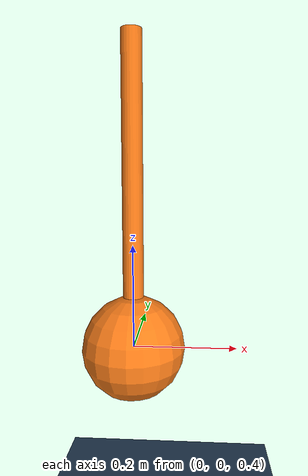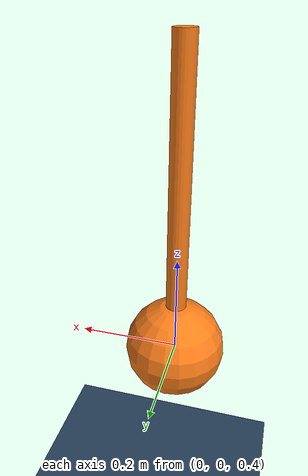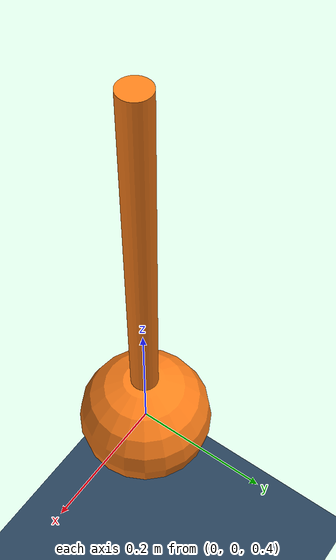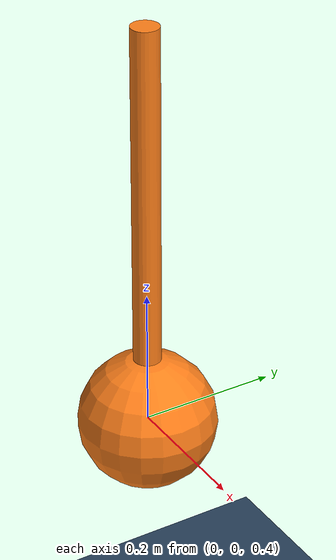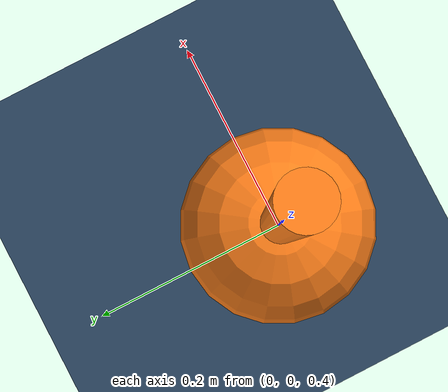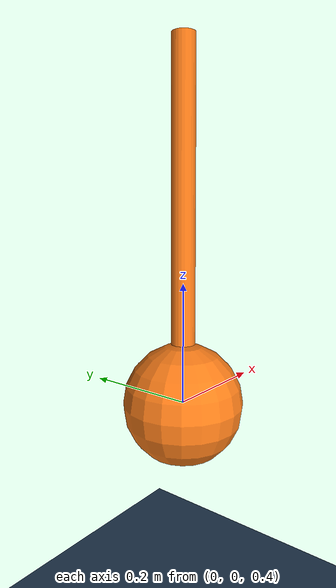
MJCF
<mujoco model="Simple Pendulum">
    <asset>
        <texture type="skybox" builtin="gradient" rgb1="0.3 0.5 0.7" rgb2="0 0 0" width="512" height="3072"/>
        <texture type="2d" name="groundplane" builtin="checker" mark="edge" rgb1="0.2 0.3 0.4" rgb2="0.1 0.2 0.3"
        markrgb="0.8 0.8 0.8" width="300" height="300"/>
        <material name="groundplane" texture="groundplane" texuniform="true" texrepeat="5 5" reflectance="0.2"/>
    </asset>

    <visual>
        <global offheight="700" offwidth="900" fovy="50" elevation="-30"/>
        <quality offsamples="8"/>
        <headlight diffuse="0.6 0.6 0.6" ambient="0.3 0.3 0.3" specular="0 0 0"/>
        <rgba haze="0.15 0.25 0.35 1"/>
    </visual>

    <statistic center="0 0 0.6"/>

    <worldbody>
        <light name="light" pos="0 0 2" dir="0 0 -1" castshadow="true" directional="false"/>
        <geom name="floor" size="0 0 .125" type="plane" material="groundplane" conaffinity="15" condim="3"/>

        <body name="pendulum" pos="0 0 1">
            <joint name="hinge" type="hinge" pos="0 0 0" axis="0 1 0" damping="3.5"/>
            <geom name="pole" type="cylinder" pos="0 0 -0.25" size="0.02 0.25" mass="0.5" rgba="1.0 0.5 0.1 1"/>
            <geom name="mass" type="sphere" pos="0 0 -0.6" size="0.1" mass="5" rgba="1.0 0.5 0.1 1"/>
        </body>
    </worldbody>

    <actuator>
        <motor joint="hinge" name="torque" gear="1" ctrllimited="true" ctrlrange="-25 25"/>
    </actuator>
</mujoco>
